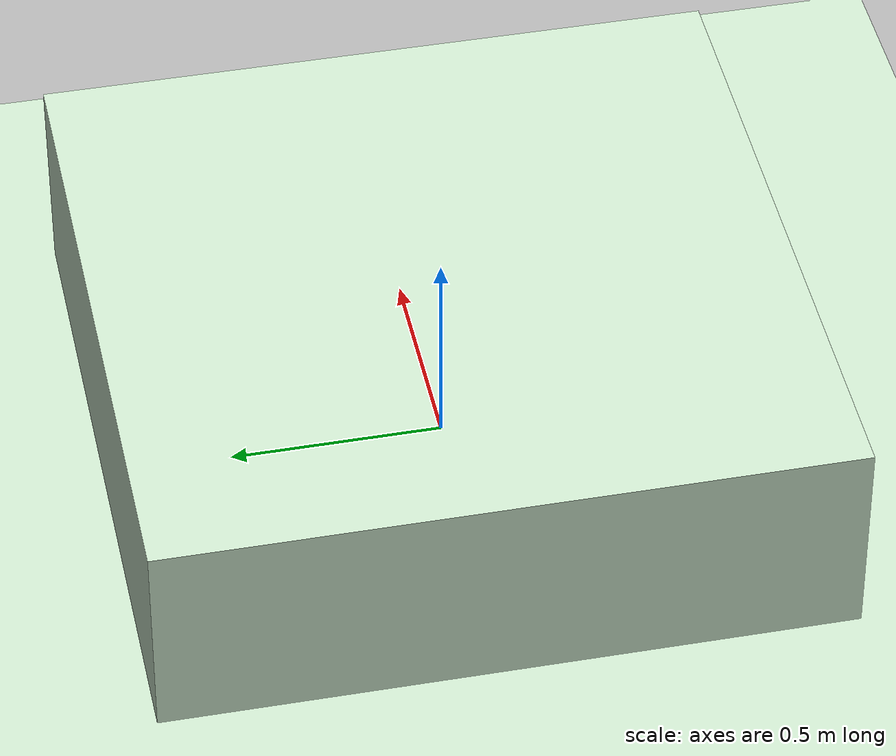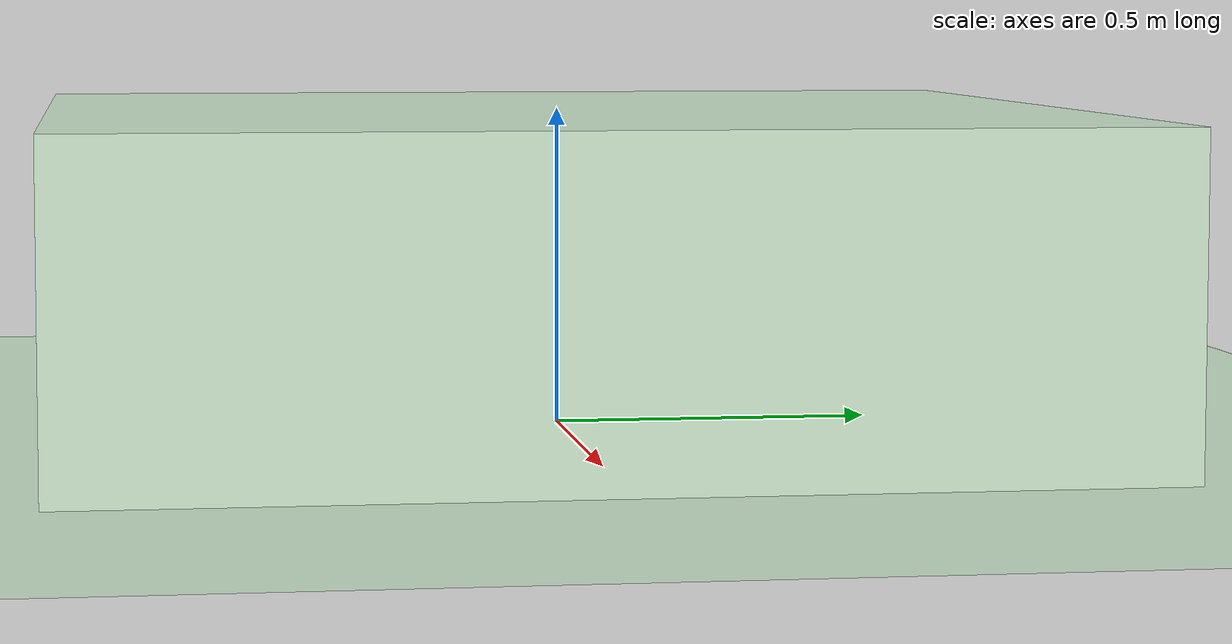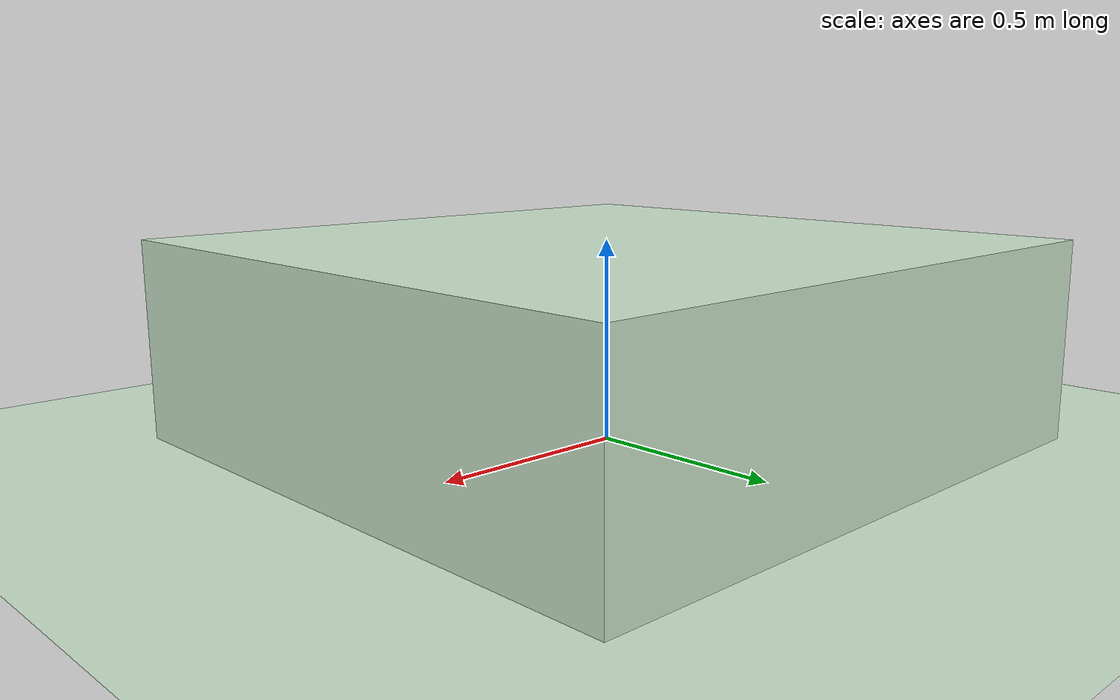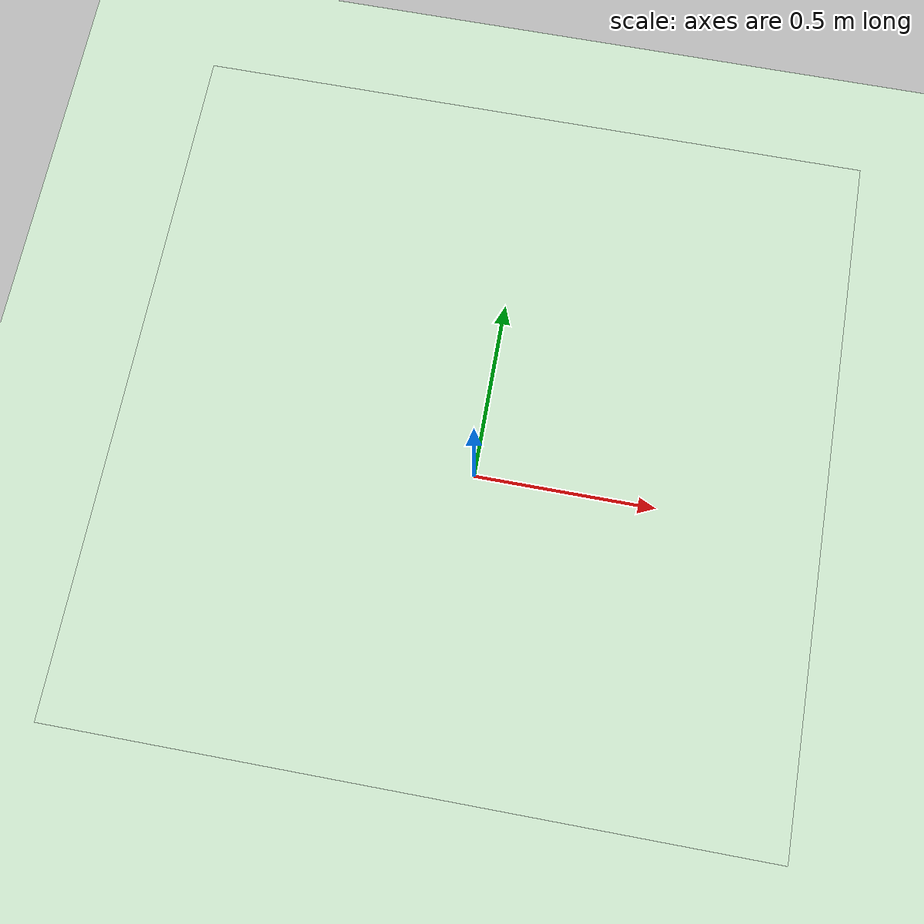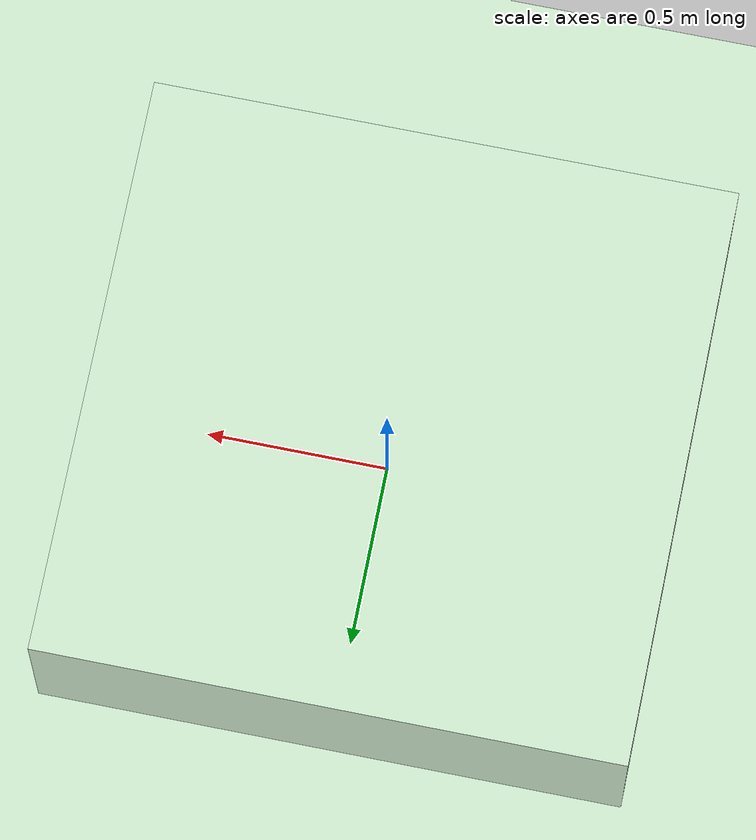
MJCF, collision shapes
<?xml version="1.0" encoding="utf-8"?>
<mujoco>
    <compiler angle="radian" coordinate="local"/>
    <option timestep="0.002" iterations="20" apirate="200">
        <flag warmstart="enable"/>
    </option>

    <size njmax="500" nconmax="100" nuser_jnt="1" nuser_site="1" nuser_tendon="1" nuser_sensor="1" nuser_actuator="16"
          nstack="600000"/>

    <visual>
        <map fogstart="3" fogend="5" force="0.1"></map>
        <quality shadowsize="4096"></quality>
    </visual>

    <default>
        <default class="robot0:asset_class">
            <geom friction="1 0.5 0.1" condim="3" contype="1" conaffinity="1"></geom>
            <joint limited="true" damping="0.1" armature="0.001" margin="0.01" frictionloss="0.001"></joint>
            <site size="0.005" rgba="0.4 0.9 0.4 1"></site>
            <general ctrllimited="true" forcelimited="true"></general>
        </default>
        <default class="robot0:D_Touch">
            <site type="box" size="0.009 0.004 0.013" pos="0 -0.004 0.018" rgba="0.8 0.8 0.8 0.15" group="4"></site>
        </default>
        <default class="robot0:DC_Hand">
            <geom material="robot0:MatColl" contype="1" conaffinity="0" group="1"></geom>
        </default>
        <default class="robot0:D_Vizual">
            <geom material="robot0:MatViz" contype="0" conaffinity="0" group="2" type="mesh"></geom>
        </default>
        <default class="robot0:free">
            <joint type="free" damping="0" armature="0" limited="false"></joint>
        </default>
    </default>

    <contact>
        <pair geom1="robot0:C_FF1" geom2="robot0:C_TH1" condim="1"></pair>
        <pair geom1="robot0:C_FF2" geom2="robot0:C_TH1" condim="1"></pair>
        <pair geom1="robot0:C_FF3" geom2="robot0:C_TH1" condim="1"></pair>
        <pair geom1="robot0:C_MF3" geom2="robot0:C_TH1" condim="1"></pair>
        <pair geom1="robot0:C_MF1" geom2="robot0:C_TH1" condim="1"></pair>
        <pair geom1="robot0:C_RF1" geom2="robot0:C_TH1" condim="1"></pair>
        <pair geom1="robot0:C_LF1" geom2="robot0:C_TH1" condim="1"></pair>
        <pair geom1="robot0:C_palm0" geom2="robot0:C_TH1" condim="1"></pair>
        <pair geom1="robot0:C_MF1" geom2="robot0:C_FF1" condim="1"></pair>
        <pair geom1="robot0:C_RF1" geom2="robot0:C_MF1" condim="1"></pair>
        <pair geom1="robot0:C_LF1" geom2="robot0:C_RF1" condim="1"></pair>
        <pair geom1="robot0:C_MF3" geom2="robot0:C_FF3" condim="1"></pair>
        <pair geom1="robot0:C_RF3" geom2="robot0:C_MF3" condim="1"></pair>
        <pair geom1="robot0:C_LF3" geom2="robot0:C_RF3" condim="1"></pair>
        <pair geom1="robot0:C_LF1" geom2="robot0:C_RF1" condim="1"></pair>
        <pair geom1="robot0:C_LF1" geom2="robot0:C_MF1" condim="1"></pair>
        <pair geom1="robot0:C_LF1" geom2="robot0:C_RF2" condim="1"></pair>
        <pair geom1="robot0:C_LF2" geom2="robot0:C_RF1" condim="1"></pair>
        <pair geom1="robot0:C_LF2" geom2="robot0:C_RF2" condim="1"></pair>
    </contact>

    <actuator>
        <motor gear="1" name="robot0:A_slide0" joint="robot0:slide0"></motor>
        <motor gear="1" name="robot0:A_slide1" joint="robot0:slide1"></motor>
        <motor gear="1" name="robot0:A_slide2" joint="robot0:slide2"></motor>
        <motor gear="1" name="robot0:A_WRJ0" user="2036" joint="robot0:WRJ0"></motor>
        <motor gear="1" name="robot0:A_WRJ1" user="2038" joint="robot0:WRJ1"></motor>
        <motor gear="1" name="robot0:A_WRJ2" user="1984" joint="robot0:WRJ2"></motor>
        <motor gear="1" name="robot0:A_FFJ3z" user="2004" joint="robot0:FFJ3z"></motor>
        <motor gear="1" name="robot0:A_FFJ3x" user="2004" joint="robot0:FFJ3x"></motor>
        <motor gear="1" name="robot0:A_FFJ2x" user="2004" joint="robot0:FFJ2x"></motor>
        <motor gear="1" name="robot0:A_FFJ1x" user="2004" joint="robot0:FFJ1x"></motor>
        <motor gear="1" name="robot0:A_MFJ3z" user="2004" joint="robot0:MFJ3z"></motor>
        <motor gear="1" name="robot0:A_MFJ3x" user="2004" joint="robot0:MFJ3x"></motor>
        <motor gear="1" name="robot0:A_MFJ2x" user="2004" joint="robot0:MFJ2x"></motor>
        <motor gear="1" name="robot0:A_MFJ1x" user="2004" joint="robot0:MFJ1x"></motor>
        <motor gear="1" name="robot0:A_LFJ3z" user="2004" joint="robot0:LFJ3z"></motor>
        <motor gear="1" name="robot0:A_LFJ3x" user="2004" joint="robot0:LFJ3x"></motor>
        <motor gear="1" name="robot0:A_LFJ2x" user="2004" joint="robot0:LFJ2x"></motor>
        <motor gear="1" name="robot0:A_LFJ1x" user="2004" joint="robot0:LFJ1x"></motor>
        <motor gear="1" name="robot0:A_RFJ3z" user="2004" joint="robot0:RFJ3z"></motor>
        <motor gear="1" name="robot0:A_RFJ3x" user="2004" joint="robot0:RFJ3x"></motor>
        <motor gear="1" name="robot0:A_RFJ2x" user="2004" joint="robot0:RFJ2x"></motor>
        <motor gear="1" name="robot0:A_RFJ1x" user="2004" joint="robot0:RFJ1x"></motor>
        <motor gear="1" name="robot0:A_THJ3z" user="2004" joint="robot0:THJ3z"></motor>
        <motor gear="1" name="robot0:A_THJ3x" user="2004" joint="robot0:THJ3x"></motor>
        <motor gear="1" name="robot0:A_THJ2x" user="2004" joint="robot0:THJ2x"></motor>
        <motor gear="1" name="robot0:A_THJ1x" user="2004" joint="robot0:THJ1x"></motor>

    </actuator>

    <asset>
        <texture type="skybox" builtin="gradient" rgb1="0.44 0.85 0.56" rgb2="0.46 0.87 0.58" width="32" height="32"/>

        <texture name="robot0:texplane" type="2d" builtin="checker" rgb1="0.2 0.3 0.4" rgb2="0.1 0.15 0.2" width="512"
                 height="512"/>
        <texture name="robot0:texgeom" type="cube" builtin="flat" mark="cross" width="127" height="127" rgb1="0.3 0.6 0.5"
                 rgb2="0.3 0.6 0.5" markrgb="0 0 0" random="0.01"/>

        <material name="robot0:MatGnd" reflectance="0.5" texture="robot0:texplane" texrepeat="1 1" texuniform="true"/>
        <material name="robot0:MatColl" specular="1" shininess="0.3" reflectance="0.5" rgba="0.4 0.5 0.6 1"/>
        <material name="robot0:MatViz" specular="0.75" shininess="0.1" reflectance="0.5" rgba="0.93 0.93 0.93 1"/>
        <material name="robot0:object" texture="robot0:texgeom" texuniform="false"/>
        <material name="floor_mat" specular="0" shininess="0.5" reflectance="0" rgba="0.2 0.2 0.2 0"/>
        <material name="MatPlane" reflectance="0.5" shininess="1" specular="1" texrepeat="60 60" texture="robot0:texplane"/>

        <mesh name="palm" file="../stls/manohand/palm_mean.stl"/>
        <mesh name="ffdist" file="../stls/manohand/ffdist_mean.stl"/>
        <mesh name="ffmiddle" file="../stls/manohand/ffmiddle_mean.stl"/>
        <mesh name="ffprox" file="../stls/manohand/ffprox_mean.stl"/>
        <mesh name="lfdist" file="../stls/manohand/lfdist_mean.stl"/>
        <mesh name="lfmiddle" file="../stls/manohand/lfmiddle_mean.stl"/>
        <mesh name="lfprox" file="../stls/manohand/lfprox_mean.stl"/>
        <mesh name="mfdist" file="../stls/manohand/mfdist_mean.stl"/>
        <mesh name="mfmiddle" file="../stls/manohand/mfmiddle_mean.stl"/>
        <mesh name="mfprox" file="../stls/manohand/mfprox_mean.stl"/>
        <mesh name="rfdist" file="../stls/manohand/rfdist_mean.stl"/>
        <mesh name="rfmiddle" file="../stls/manohand/rfmiddle_mean.stl"/>
        <mesh name="rfprox" file="../stls/manohand/rfprox_mean.stl"/>
        <mesh name="thdist" file="../stls/manohand/thdist_mean.stl"/>
        <mesh name="thmiddle" file="../stls/manohand/thmiddle_mean.stl"/>
        <mesh name="thprox" file="../stls/manohand/thprox_mean.stl"/>
    </asset>

    <worldbody>
        <geom conaffinity="1" condim="3" name="floor" pos="0 0 0" rgba="0.8 0.9 0.8 1" size="100 100 .2" type="plane" material="MatPlane"/>
        <body name="table">
            <geom name="C_Table" type="box" size="0.8 0.8 0.25" rgba="0.8 0.9 0.8 1" pos="0 0 0.25" condim="4" contype="1" conaffinity="0" />
        </body>
        <body name="handworld" pos="0 0 0" euler="0 0 0">
            <body name="link_palm" pos="0 0 0" euler="0 0 0" childclass="robot0:asset_class">
            <joint name="robot0:slide0" type="slide" pos="0 0 0" axis="1 0 0" range="-2.0 2.0" armature="0.005"></joint>
            <joint name="robot0:slide1" type="slide" pos="0 0 0" axis="0 1 0" range="-2.0 2.0" armature="0.005"></joint>
            <joint name="robot0:slide2" type="slide" pos="0 0 0" axis="0 0 1" range="0.2 2.0" armature="0.005"></joint>
            <joint name="robot0:WRJ0" type="hinge" pos="0 0 0" axis="1 0 0" range="-3.14 3.14" armature="0.005" user="1123"></joint>
            <joint name="robot0:WRJ1" type="hinge" pos="0 0 0" axis="0 1 0" range="-1.57 1.57" armature="0.005" user="1123"></joint>
            <joint name="robot0:WRJ2" type="hinge" pos="0 0 0" axis="0 0 1" range="-3.14 3.14" armature="0.005" user="1123"></joint>
            <inertial pos="-0.03 0 0" euler="0 0 0.2" mass="0.3" diaginertia="0.001 0.001 0.001"/>
            <geom class="robot0:D_Vizual" name="robot0:V_palm" mesh="palm"></geom>
            <geom class="robot0:DC_Hand" name="robot0:C_palm0" type="box" pos="-0.01 0.03 0.005" size="0.04 0.04 0.0135" euler="0 0 0"></geom>
            <body name="link_ff_pm" quat="0.124112 -0.0723957  0.989102 0.0321224" pos="-0.0394865 0.0673819 0.0011229">
                <joint name="robot0:FFJ3z" type="hinge" pos="0 0 0" axis="0 0 1" range="-0.35 0.3" armature="0.005" user="1123"></joint>
                <joint name="robot0:FFJ3x" type="hinge" pos="0 0 0" axis="1 0 0" range="-1.3 1.6" armature="0.005" user="1123"></joint>
                <inertial pos="0 0.0228296 0" mass="0.014" diaginertia="1e-05 1e-05 1e-05"></inertial>
                <geom class="robot0:D_Vizual" name="robot0:V_FF3" mesh="ffprox"></geom>
                <geom class="robot0:DC_Hand" name="robot0:C_FF3" type="capsule" euler="1.57 0 0" pos="0 0.0228296 0" size="0.01 0.0228296"></geom>
                <body name="link_ff_md" quat="-0.999945 0 0 -0.0104861" pos="0 0.0456592 0">
                    <inertial pos="0 0.0136348 0" mass="0.012" diaginertia="1e-05 1e-05 1e-05"></inertial>
                    <joint name="robot0:FFJ2x" type="hinge" pos="0 0 0" axis="1 0 0" range="-0.1 2.0" armature="0.005" user="1123"></joint>
                    <geom class="robot0:D_Vizual" name="robot0:V_FF2" mesh="ffmiddle"></geom>
                    <geom class="robot0:DC_Hand" name="robot0:C_FF2" type="capsule" euler="1.57 0 0" pos="0 0.0136348 0" size="0.009 0.0136348"></geom>
                    <body name="link_ff_dd" quat="-0.9992 0 0 -0.0399893" pos="0 0.0272696 0">
                        <inertial pos="0 0.0093181 0" mass="0.01" diaginertia="1e-05 1e-05 1e-05"></inertial>
                        <joint name="robot0:FFJ1x" type="hinge" pos="0 0 0" axis="1 0 0" range="-0.1 2.0" armature="0.005" user="1123"></joint>
                        <geom class="robot0:D_Vizual" name="robot0:V_FF1" mesh="ffdist"></geom>
                        <geom class="robot0:DC_Hand" name="robot0:C_FF1" type="capsule" euler="1.57 0 0" pos="0 0.0093181 0" size="0.0085 0.0093181"></geom>
                        <body name="link_ff_tip" pos="0 0.0186362 0">
                            <inertial pos="0 0 0" euler="0 0 0" mass="0.001" diaginertia="1e-06 1e-06 1e-06"></inertial>
                        </body>
                    </body>
                </body>
            </body>
            <body name="link_mf_pm" quat="0.0601268 0.0089805 0.998009 0.0168109" pos="-0.017018 0.0703726 0.00635547">
                <inertial pos="0 0.02810025 0" mass="0.014" diaginertia="1e-05 1e-05 1e-05"></inertial>
                <joint name="robot0:MFJ3z" type="hinge" pos="0 0 0" axis="0 0 1" range="-0.4 0.3" armature="0.005" user="1123"></joint>
                <joint name="robot0:MFJ3x" type="hinge" pos="0 0 0" axis="1 0 0" range="-1.3 1.6" armature="0.005" user="1123"></joint>
                <geom class="robot0:D_Vizual" name="robot0:V_MF3" mesh="mfprox"></geom>
                <geom class="robot0:DC_Hand" name="robot0:C_MF3" type="capsule" euler="1.57 0 0" pos="0 0.02810025 0" size="0.01 0.02810025"></geom>
                <body name="link_mf_md" quat="-0.999229 0 0 -0.0392598" pos="0 0.0562005 0">
                    <inertial pos="0 0.0160573 0" mass="0.012" diaginertia="1e-05 1e-05 1e-05"></inertial>
                    <joint name="robot0:MFJ2x" type="hinge" pos="0 0 0" axis="1 0 0" range="-0.1 2.0" armature="0.005" user="1123"></joint>
                    <geom class="robot0:D_Vizual" name="robot0:V_MF2" mesh="mfmiddle"></geom>
                    <geom class="robot0:DC_Hand" name="robot0:C_MF2" type="capsule" euler="1.57 0 0" pos="0 0.0160573 0" size="0.009 0.0160573"></geom>
                    <body name="link_mf_dd" quat="0.999973 0 0 0.0073836" pos="0 0.0321146 0">
                        <inertial pos="0 0.00917255 0" mass="0.01" diaginertia="1e-05 1e-05 1e-05"></inertial>
                        <joint name="robot0:MFJ1x" type="hinge" pos="0 0 0" axis="1 0 0" range="-0.1 2.0" armature="0.005" user="1123"></joint>
                        <geom class="robot0:D_Vizual" name="robot0:V_MF1" mesh="mfdist"></geom>
                        <geom class="robot0:DC_Hand" name="robot0:C_MF1" type="capsule" euler="1.57 0 0" pos="0 0.00917255 0" size="0.0085 0.00917255"></geom>
                        <body name="link_mf_tip" pos="0 0.0183451 0">
                            <inertial pos="0 0 0" euler="0 0 0" mass="0.001" diaginertia="1e-06 1e-06 1e-06"></inertial>
                        </body>
                    </body>
                </body>
            </body>
            <body name="link_lf_pm" quat="-0.102886 0.198238 0.97371 -0.0447794" pos="0.0213338 0.0665155 0.000943775">
                <joint name="robot0:LFJ3z" type="hinge" pos="0 0 0" axis="0 0 1" range="-0.65 0.2" armature="0.005" user="1123"></joint>
                <joint name="robot0:LFJ3x" type="hinge" pos="0 0 0" axis="1 0 0" range="-1.3 1.6" armature="0.005" user="1123"></joint>
                <inertial pos="0 0.01892845 0" mass="0.07" diaginertia="0.0005 0.0005 0.0005"/>
                <geom class="robot0:D_Vizual" name="robot0:V_LF3" mesh="lfprox"></geom>
                <geom class="robot0:DC_Hand" name="robot0:C_LF3" type="capsule" euler="1.57 0 0" pos="0 0.01892845 0" size="0.008 0.01892845"></geom>
                <body name="link_lf_md" quat="-0.99963 0 0 0.0271924" pos="0 0.0378569 0">
                    <inertial pos="0 0.0111746 0" mass="0.06" diaginertia="0.0005 0.0005 0.0005"/>
                    <joint name="robot0:LFJ2x" type="hinge" pos="0 0 0" axis="1 0 0" range="-0.1 2.0" armature="0.005" user="1123"></joint>
                    <geom class="robot0:D_Vizual" name="robot0:V_LF2" mesh="lfmiddle"></geom>
                    <geom class="robot0:DC_Hand" name="robot0:C_LF2" type="capsule" euler="1.57 0 0" pos="0 0.0111746 0" size="0.007 0.0111746"></geom>
                    <body name="link_lf_dd" quat="-0.999229 0 0 0.0392598" pos="0 0.0223492 0">
                        <inertial pos="0 0.007704 0" mass="0.05" diaginertia="0.0005 0.0005 0.0005"/>
                        <joint name="robot0:LFJ1x" type="hinge" pos="0 0 0" axis="1 0 0" range="-0.1 2.0" armature="0.005" user="1123"></joint>
                        <geom class="robot0:D_Vizual" name="robot0:V_LF1" mesh="lfdist"></geom>
                        <geom class="robot0:DC_Hand" name="robot0:C_LF1" type="capsule" euler="1.57 0 0" pos="0 0.007704 0" size="0.006 0.007704"></geom>
                        <body name="link_lf_tip" pos="0 0.015408 0">
                            <inertial pos="0 0 0" euler="0 0 0" mass="0.001" diaginertia="1e-06 1e-06 1e-06"></inertial>
                        </body>
                    </body>
                </body>
            </body>
            <body name="link_rf_pm" quat="-0.00348342 0.0794858 0.995874 -0.0436436" pos="0.000347831 0.0693786 0.00601275">
                <joint name="robot0:RFJ3z" type="hinge" pos="0 0 0" axis="0 0 1" range="-0.3 0.1" armature="0.005" user="1123"></joint>
                <joint name="robot0:RFJ3x" type="hinge" pos="0 0 0" axis="1 0 0" range="-1.3 1.6" armature="0.005" user="1123"></joint>
                <inertial pos="0 0.02588765 0" mass="0.014" diaginertia="1e-05 1e-05 1e-05"></inertial>
                <geom class="robot0:D_Vizual" name="robot0:V_RF3" mesh="rfprox"></geom>
                <geom class="robot0:DC_Hand" name="robot0:C_RF3" type="capsule" euler="1.57 0 0" pos="0 0.02588765 0" size="0.01 0.02588765"></geom>
                <body name="link_rf_md" pos="0 0.0517753 0">
                    <inertial pos="0 0.01479295 0" mass="0.012" diaginertia="1e-05 1e-05 1e-05"></inertial>
                    <joint name="robot0:RFJ2x" type="hinge" pos="0 0 0" axis="1 0 0" range="-0.1 2.0" armature="0.005" user="1123"></joint>
                    <geom class="robot0:D_Vizual" name="robot0:V_RF2" mesh="rfmiddle"></geom>
                    <geom class="robot0:DC_Hand" name="robot0:C_RF2" type="capsule" euler="1.57 0 0" pos="0 0.01479295 0" size="0.009 0.01479295"></geom>
                    <body name="link_rf_dd" pos="0 0.0295859 0">
                        <inertial pos="0 0.0084531 0" mass="0.01" diaginertia="1e-05 1e-05 1e-05"></inertial>
                        <joint name="robot0:RFJ1x" type="hinge" pos="0 0 0" axis="1 0 0" range="-0.1 2.0" armature="0.005" user="1123"></joint>
                        <geom class="robot0:D_Vizual" name="robot0:V_RF1" mesh="rfdist"></geom>
                        <geom class="robot0:DC_Hand" name="robot0:C_RF1" type="capsule" euler="1.57 0 0" pos="0 0.0084531 0" size="0.0085 0.0084531"></geom>
                        <body name="link_rf_tip" pos="0 0.0169062 0">
                            <inertial pos="0 0 0" euler="0 0 0" mass="0.001" diaginertia="1e-06 1e-06 1e-06"></inertial>
                        </body>
                    </body>
                </body>
            </body>
            <body name="link_th_pm" quat="-0.563478 0.172425  0.648492 -0.481892" pos="-0.0194548 0.00353334 -0.00776414">
                <joint name="robot0:THJ3z" type="hinge" pos="0 0 0" axis="0 0 1" range="-1.0 0.1" armature="0.005" user="1123"></joint>
                <joint name="robot0:THJ3x" type="hinge" pos="0 0 0" axis="1 0 0" range="-0.5 1.0" armature="0.005" user="1123"></joint>
                <inertial pos="0 0.02441495 0" mass="0.016" diaginertia="1e-05 1e-05 1e-05"></inertial>
                <geom class="robot0:D_Vizual" name="robot0:V_TH3" mesh="thprox"></geom>
                <geom class="robot0:DC_Hand" name="robot0:C_TH3" euler="1.57 0 0" type="capsule" pos="0 0.02441495 0" size="0.013 0.02441495"></geom>
                <body name="link_th_md" quat="-0.994276 0.0997603 -0.00381833 0.0380559" pos="0 0.0488299 0">
                    <joint name="robot0:THJ2x" type="hinge" pos="0 0 0" axis="1 0 0" range="-0.9 0.2" armature="0.005" user="1123"></joint>
                    <inertial pos="0 0.01749035 0" mass="0.014" diaginertia="1e-05 1e-05 1e-05"></inertial>
                    <geom class="robot0:D_Vizual" name="robot0:V_TH2" mesh="thmiddle"></geom>
                    <geom class="robot0:DC_Hand" name="robot0:C_TH2" type="capsule" euler="1.57 0 0" pos="0 0.01749035 0" size="0.011 0.01749035"></geom>
                    <body name="link_th_dd" quat="-0.994683 0.0998011 0.00253618 -0.0252774" pos="0 0.0349807 0">
                        <joint name="robot0:THJ1x" type="hinge" pos="0 0 0" axis="1 0 0" range="-0.9 0.1" armature="0.005" user="1123"></joint>
                        <inertial pos="0 0.01241705 0" mass="0.012" diaginertia="1e-05 1e-05 1e-05"></inertial>
                        <geom class="robot0:D_Vizual" name="robot0:V_TH1" mesh="thdist"></geom>
                        <geom class="robot0:DC_Hand" name="robot0:C_TH1" type="capsule" euler="1.57 0 0" pos="0 0.01241705 0" size="0.009 0.01241705"></geom>
                        <body name="link_th_tip" pos="0 0.0248341 0">
                            <inertial pos="0 0 0" euler="0 0 0" mass="0.001" diaginertia="1e-06 1e-06 1e-06"></inertial>
                        </body>
                    </body>
                </body>
            </body>
        </body>
        </body>
        <light directional="true" ambient="0.2 0.2 0.2" diffuse="0.8 0.8 0.8" specular="0.3 0.3 0.3" castshadow="false"
               pos="0 1 4" dir="0 0 -1" name="light0"/>
    </worldbody>
</mujoco>
